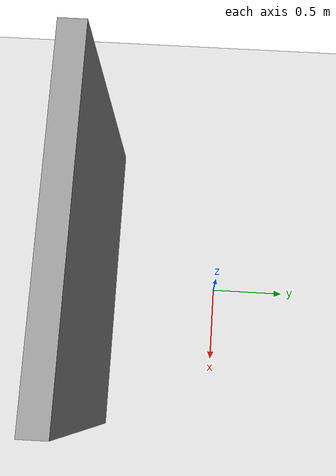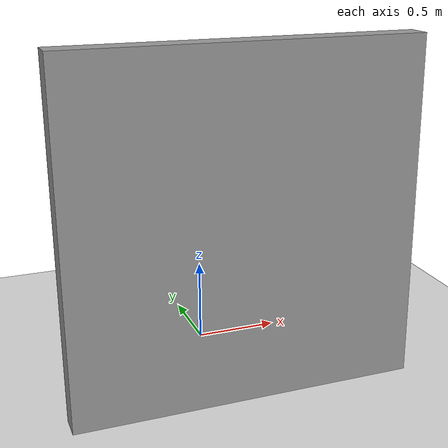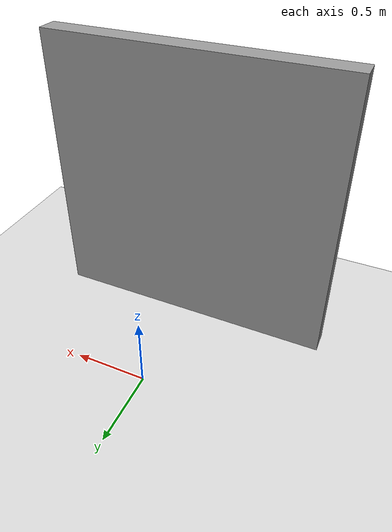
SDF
<sdf version="1.9">
 <world name="simple_5x5_grid">
  <model name="ground_plane">
   <static>true</static>
   <pose>4.0 4.0 0 0 0 0</pose>
   <link name="ground_link">
    <visual name="ground_visual">
     <geometry><box><size>12.0 12.0 0.01</size></box></geometry>
     <material><ambient>0.85 0.85 0.85 1.0</ambient><diffuse>0.85 0.85 0.85 1.0</diffuse></material>
    </visual>
    <collision name="ground_visual_collision">
     <geometry><box><size>12.0 12.0 0.01</size></box></geometry>
    </collision>
    <collision name="ground_collision">
     <geometry><plane><normal>0 0 1</normal><size>12.0 12.0</size></plane></geometry>
    </collision>
   </link>
  </model>
  <model name="dock_wall_DOCK_1_001">
   <static>true</static>
   <pose>0 -0.8 1.0 0 0 0</pose>
   <link name="dock_wall_DOCK_1_001_link">
    <visual name="dock_wall_DOCK_1_001_vis">
     <geometry><box><size>2.0 0.15 2.0</size></box></geometry>
     <material><ambient>0.6 0.6 0.6 1.0</ambient><diffuse>0.6 0.6 0.6 1.0</diffuse></material>
    </visual>
    <collision name="dock_wall_DOCK_1_001_vis_collision">
     <geometry><box><size>2.0 0.15 2.0</size></box></geometry>
    </collision>
   </link>
  </model>
 </world>
</sdf>
